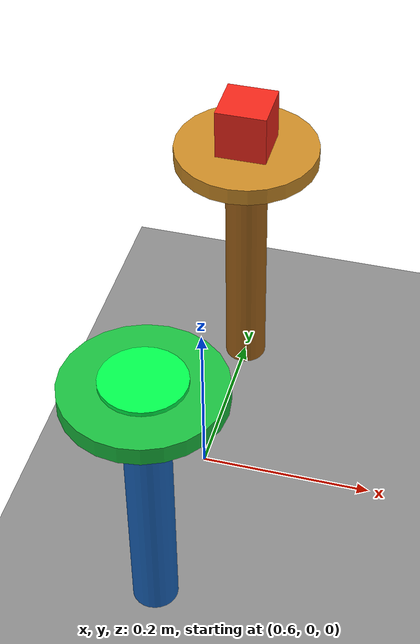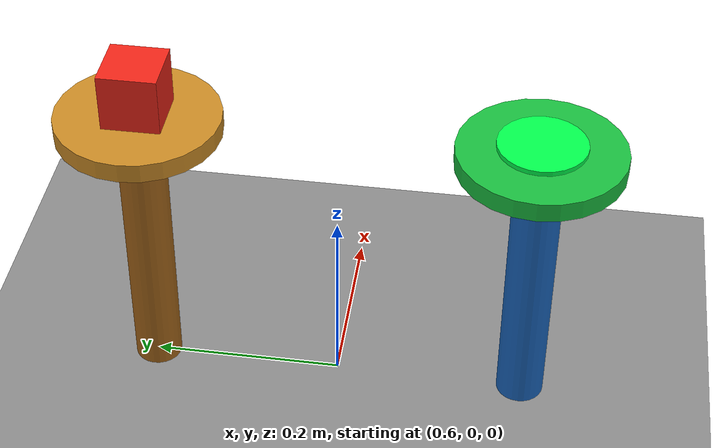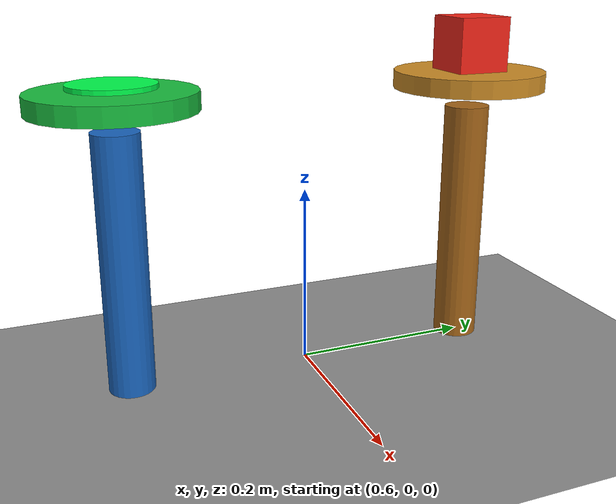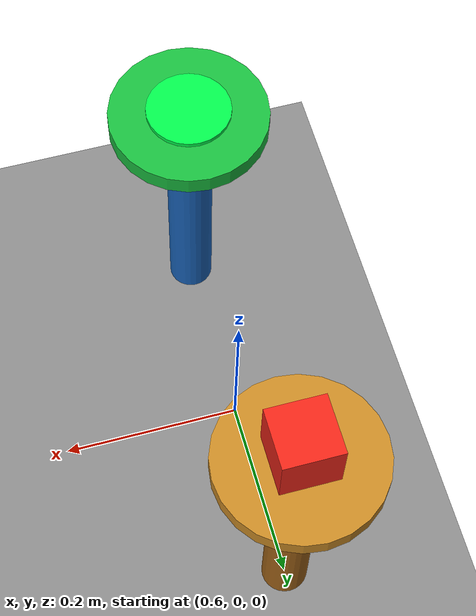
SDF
<?xml version="1.0" ?>
<sdf version="1.8">
  <world name="pick_place">

    <physics type="ode">
      <!-- 250 Hz pour le pipeline gz↔ros2_control. Solver ODE renforcé pour
           des contacts stables avec frottement de Coulomb réaliste. -->
      <max_step_size>0.004</max_step_size>
      <real_time_factor>1.0</real_time_factor>
      <ode>
        <solver>
          <type>quick</type>
          <!-- 100 itérations : nécessaire pour converger les contacts multiples
               (cube+cap, doigts+cube) avec μ > 0.5 → évite la pénétration résiduelle -->
          <iters>100</iters>
          <sor>1.3</sor>
          <!-- ERP/CFM globaux : erreur de contrainte réduite à 20 % par step.
               cfm=1e-5 → rigidité des contacts sans divergence numérique -->
          <erp>0.2</erp>
          <cfm>1e-5</cfm>
        </solver>
        <constraints>
          <!-- contact_surface_layer : épaisseur de la couche de contact.
               1 mm réduit le jitter à haute fréquence sur les surfaces planes. -->
          <contact_surface_layer>0.001</contact_surface_layer>
          <contact_max_correcting_vel>10.0</contact_max_correcting_vel>
          <cfm>1e-5</cfm>
          <erp>0.2</erp>
        </constraints>
      </ode>
    </physics>

    <plugin filename="gz-sim-physics-system"
            name="gz::sim::systems::Physics"/>
    <plugin filename="gz-sim-user-commands-system"
            name="gz::sim::systems::UserCommands"/>
    <plugin filename="gz-sim-scene-broadcaster-system"
            name="gz::sim::systems::SceneBroadcaster"/>
    <plugin filename="gz-sim-contact-system"
            name="gz::sim::systems::Contact"/>

    <light type="directional" name="sun">
      <cast_shadows>true</cast_shadows>
      <pose>0 0 10 0 0 0</pose>
      <diffuse>0.8 0.8 0.8 1</diffuse>
      <specular>0.2 0.2 0.2 1</specular>
      <attenuation>
        <range>1000</range><constant>0.9</constant>
        <linear>0.01</linear><quadratic>0.001</quadratic>
      </attenuation>
      <direction>-0.5 0.1 -0.9</direction>
    </light>

    <!-- Ground plane -->
    <model name="ground_plane">
      <static>true</static>
      <link name="link">
        <collision name="col">
          <geometry><plane><normal>0 0 1</normal><size>10 10</size></plane></geometry>
          <surface><friction><ode><mu>100</mu><mu2>50</mu2></ode></friction></surface>
        </collision>
        <visual name="vis">
          <geometry><plane><normal>0 0 1</normal><size>10 10</size></plane></geometry>
          <material>
            <ambient>0.55 0.55 0.55 1</ambient>
            <diffuse>0.55 0.55 0.55 1</diffuse>
          </material>
        </visual>
      </link>
    </model>

    <model name="pole_a">
      <static>true</static>
      <pose>0.60 0.20 0.14 0 0 0</pose>
      <link name="link">
        <collision name="col">
          <geometry><cylinder><radius>0.025</radius><length>0.28</length></cylinder></geometry>
          <surface><friction><ode><mu>1.0</mu><mu2>1.0</mu2></ode></friction></surface>
        </collision>
        <visual name="vis">
          <geometry><cylinder><radius>0.025</radius><length>0.28</length></cylinder></geometry>
          <material>
            <ambient>0.65 0.40 0.10 1</ambient>
            <diffuse>0.65 0.40 0.10 1</diffuse>
          </material>
        </visual>
      </link>
    </model>

    <!-- Cap on platform A — wide flat disc so cube sits stably -->
    <model name="cap_a">
      <static>true</static>
      <pose>0.60 0.20 0.31 0 0 0</pose>
      <link name="link">
        <collision name="col">
          <geometry><cylinder><radius>0.085</radius><length>0.02</length></cylinder></geometry>
          <surface>
            <!-- Cap A : aluminium anodisé. μ=0.5 correspond au frottement ABS/alu.
                 Contact rigide (kp=1e6) pour que le cube repose sans dérive. -->
            <friction><ode><mu>0.5</mu><mu2>0.5</mu2></ode></friction>
            <contact><ode><kp>1e6</kp><kd>50</kd><min_depth>0.001</min_depth></ode></contact>
          </surface>
        </collision>
        <visual name="vis">
          <geometry><cylinder><radius>0.085</radius><length>0.02</length></cylinder></geometry>
          <material>
            <ambient>0.80 0.55 0.15 1</ambient>
            <diffuse>0.80 0.55 0.15 1</diffuse>
          </material>
        </visual>
      </link>
    </model>

    <model name="pole_b">
      <static>true</static>
      <pose>0.60 -0.20 0.14 0 0 0</pose>
      <link name="link">
        <collision name="col">
          <geometry><cylinder><radius>0.025</radius><length>0.28</length></cylinder></geometry>
          <surface><friction><ode><mu>1.0</mu><mu2>1.0</mu2></ode></friction></surface>
        </collision>
        <visual name="vis">
          <geometry><cylinder><radius>0.025</radius><length>0.28</length></cylinder></geometry>
          <material>
            <ambient>0.10 0.40 0.75 1</ambient>
            <diffuse>0.10 0.40 0.75 1</diffuse>
          </material>
        </visual>
      </link>
    </model>

    <!-- Cap on platform B — same geometry, green tint to mark the target -->
    <model name="cap_b">
      <static>true</static>
      <pose>0.60 -0.20 0.31 0 0 0</pose>
      <link name="link">
        <collision name="col">
          <geometry><cylinder><radius>0.085</radius><length>0.02</length></cylinder></geometry>
          <surface>
            <!-- Cap B : même matériau que Cap A -->
            <friction><ode><mu>0.5</mu><mu2>0.5</mu2></ode></friction>
            <contact><ode><kp>1e6</kp><kd>50</kd><min_depth>0.001</min_depth></ode></contact>
          </surface>
        </collision>
        <visual name="vis">
          <geometry><cylinder><radius>0.085</radius><length>0.02</length></cylinder></geometry>
          <material>
            <ambient>0.10 0.75 0.25 1</ambient>
            <diffuse>0.10 0.75 0.25 1</diffuse>
          </material>
        </visual>
      </link>
    </model>

    <!-- Green arrow marker on cap B so the target zone is obvious -->
    <model name="target_marker">
      <static>true</static>
      <pose>0.60 -0.20 0.325 0 0 0</pose>
      <link name="link">
        <visual name="vis">
          <geometry><cylinder><radius>0.045</radius><length>0.005</length></cylinder></geometry>
          <material>
            <ambient>0.0 1.0 0.3 0.9</ambient>
            <diffuse>0.0 1.0 0.3 0.9</diffuse>
          </material>
        </visual>
      </link>
    </model>

    <model name="cube">
      <pose>0.60 0.20 0.35 0 0 0</pose>
      <link name="link">
        <inertial>
          <mass>0.12</mass>
          <inertia>
            <ixx>7.2e-5</ixx><iyy>7.2e-5</iyy><izz>7.2e-5</izz>
          </inertia>
        </inertial>
        <collision name="col">
          <geometry><box><size>0.06 0.06 0.06</size></box></geometry>
          <surface>
            <friction>
              <ode>
                <mu>0.7</mu>
                <mu2>0.7</mu2>
                <!-- fdir1 : direction principale de frottement (non contrainte) -->
                <slip1>0.0</slip1>
                <slip2>0.0</slip2>
              </ode>
            </friction>
            <contact>
              <ode>
                <kp>5e5</kp>
                <kd>30</kd>
                <min_depth>0.001</min_depth>
                <max_vel>0.5</max_vel>
              </ode>
            </contact>
            <bounce>
              <!-- Restitution 0.3 : cube ABS rigide, restitution mesurée sur banc -->
              <restitution_coefficient>0.3</restitution_coefficient>
              <threshold>0.001</threshold>
            </bounce>
          </surface>
        </collision>
        <visual name="vis">
          <geometry><box><size>0.06 0.06 0.06</size></box></geometry>
          <material>
            <ambient>0.95 0.15 0.10 1</ambient>
            <diffuse>0.95 0.15 0.10 1</diffuse>
            <specular>0.6 0.6 0.6 1</specular>
          </material>
        </visual>
      </link>
    </model>

  </world>
</sdf>
